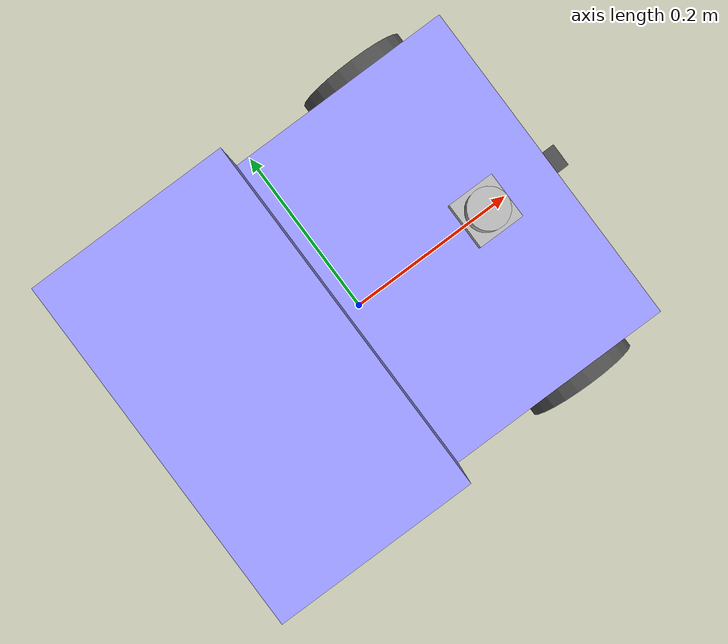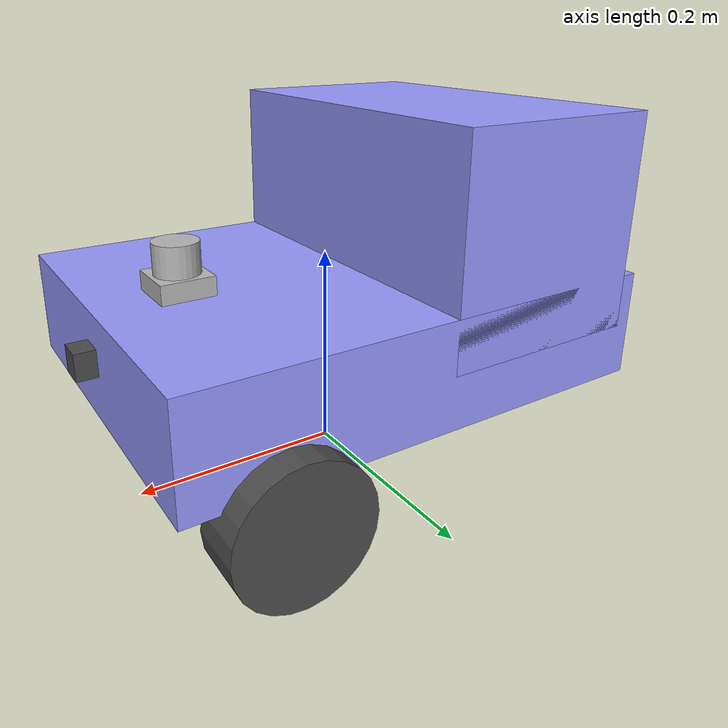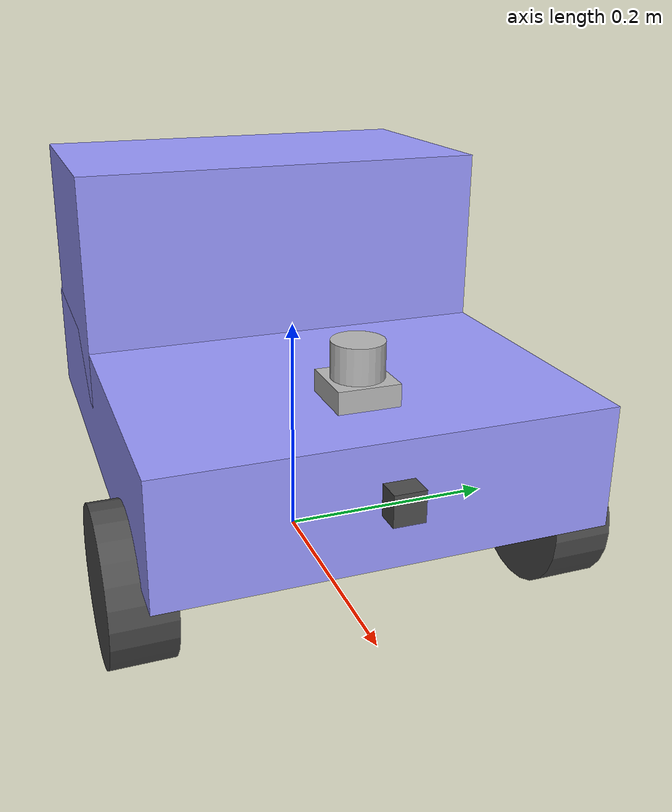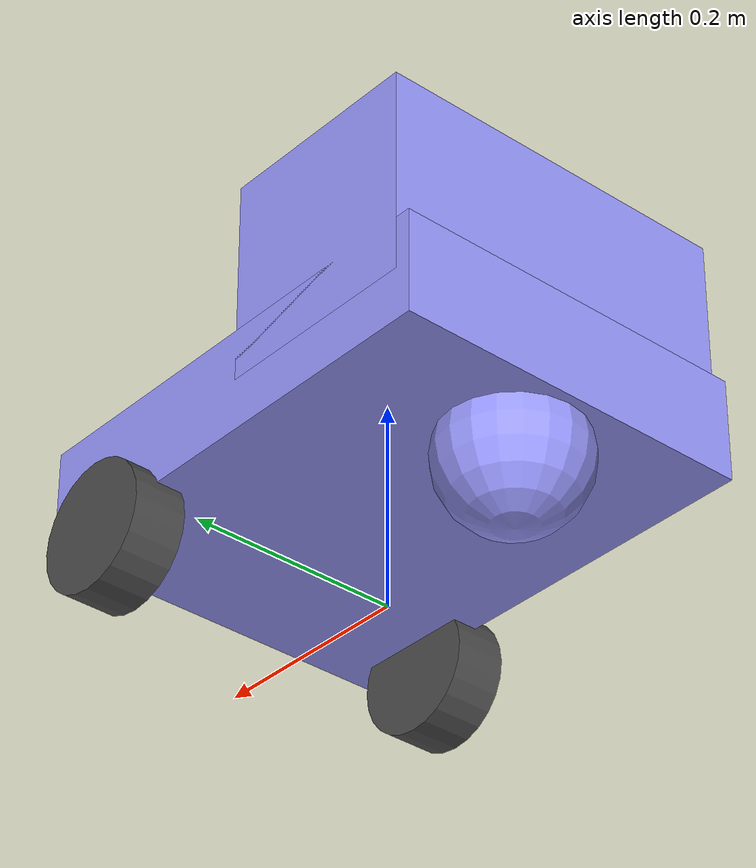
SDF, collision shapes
<?xml version='1.0'?>
<sdf version='1.4'>
  <model name="Collection_bot">
    <static>false</static>

    <link name="base_link">
      <pose>0 0 0.138 0 0 0</pose>
      <inertial>
        <mass>2.0</mass>
        <inertia>
          <ixx>.25</ixx>
          <ixy>0.0</ixy>
          <ixz>0.0</ixz>
          <iyy>.25</iyy>
          <iyz>0.0</iyz>
          <izz>.25</izz>
        </inertia>
      </inertial>
      <collision name="collision">
        <geometry>
          <box>
            <size>0.4572 0.3556 0.1</size>
          </box>
        </geometry>
      </collision>
      <visual name="visual">
        <geometry>
          <box>
            <size>0.4572 0.3556 0.1</size>
          </box>
        </geometry>
        <material>
          <ambient>0.6 0.6 1 1</ambient>
          <diffuse>0.6 0.6 1 1</diffuse>
          <specular>0.1 0.1 0.1 1</specular>
          <emissive>0 0 0 0</emissive>
        </material>
      </visual>

      <collision name="trash_can">
        <pose>-0.114 0 0.1 0 0 0</pose>
        <geometry>
          <box>
            <size>0.2 0.3556 0.2</size>
          </box>
        </geometry>
      </collision>
      <visual name="trash_visual">
        <pose>-0.114 0 0.1 0 0 0</pose>
        <geometry>
          <box>
            <size>.2 .3556 .2</size>
          </box>
        </geometry>
        <material>
          <ambient>0.3 0.3 0.3 1</ambient>
          <diffuse>0.3 0.3 0.3 1</diffuse>
          <specular>0.1 0.1 0.1 1</specular>
          <emissive>0 0 0 0</emissive>
        </material>
      </visual>

      <collision name="caster_collision">
        <pose>-0.154 0 -0.06905 0 0 0</pose>
        <geometry>
          <sphere>
            <radius>0.06905</radius>
          </sphere>
        </geometry>
        <surface>
          <friction>
            <ode>
              <mu>0</mu>
              <mu2>0</mu2>
              <slip1>1.0</slip1>
              <slip2>1.0</slip2>
            </ode>
          </friction>
        </surface>
      </collision>
      <visual name="caster_visual">
        <pose>-0.154 0 -0.06905 0 0 0</pose>
        <geometry>
          <sphere>
            <radius>0.06905</radius>
          </sphere>
        </geometry>
        <material>
          <ambient>0.3 0.3 0.3 1</ambient>
          <diffuse>0.3 0.3 0.3 1</diffuse>
          <specular>0.1 0.1 0.1 1</specular>
          <emissive>0 0 0 0</emissive>
        </material>
      </visual>
    </link>

    <link name="left_wheel_link">
      <pose>0.1413 -0.1778 0.0619125 1.57079632679 0 0</pose>
      <inertial>
        <mass>.143</mass>
        <inertia>
          <ixx>.00041955</ixx>
          <ixy>0.0</ixy>
          <ixz>0.0</ixz>
          <iyy>.00027407</iyy>
          <iyz>0.0</iyz>
          <izz>.00041955</izz>
        </inertia>
      </inertial>
      <collision name="collision">
        <geometry>
          <cylinder>
            <length>0.05</length>
            <radius>0.0619125</radius>
          </cylinder>
        </geometry>
      </collision>
      <visual name="visual">
        <geometry>
          <cylinder>
            <length>0.05</length>
            <radius>0.0619125</radius>
          </cylinder>
        </geometry>
        <material>
          <ambient>0.3 0.3 0.3 1</ambient>
          <diffuse>0.3 0.3 0.3 1</diffuse>
          <specular>0.1 0.1 0.1 1</specular>
          <emissive>0 0 0 0</emissive>
        </material>
      </visual>
    </link>

    <link name="right_wheel_link">
      <pose>0.1413 0.1778 0.0619125 1.57079632679 0 0</pose>
      <inertial>
        <mass>.143</mass>
        <inertia>
          <ixx>.00041955</ixx>
          <ixy>0.0</ixy>
          <ixz>0.0</ixz>
          <iyy>.00027407</iyy>
          <iyz>0.0</iyz>
          <izz>.00041955</izz>
        </inertia>
      </inertial>
      <collision name="collision">
        <geometry>
          <cylinder>
            <length>0.05</length>
            <radius>0.0619125</radius>
          </cylinder>
        </geometry>
      </collision>
      <visual name="visual">
        <geometry>
          <cylinder>
            <length>0.05</length>
            <radius>0.0619125</radius>
          </cylinder>
        </geometry>
        <material>
          <ambient>0.3 0.3 0.3 1</ambient>
          <diffuse>0.3 0.3 0.3 1</diffuse>
          <specular>0.1 0.1 0.1 1</specular>
          <emissive>0 0 0 0</emissive>
        </material>
      </visual>
    </link>

    <!-- Joints -->
    <joint name="base_left_wheel" type="revolute">
      <parent>base_link</parent>
      <child>left_wheel_link</child>
      <axis>
        <xyz>0 1 0</xyz>
      </axis>
    </joint>

    <joint name="base_right_wheel" type="revolute">
      <parent>base_link</parent>
      <child>right_wheel_link</child>
      <axis>
        <xyz>0 1 0</xyz>
      </axis>
    </joint>

    <link name="hokuyo_link">
      <pose>0.15 0 .2 0 0 0</pose>
      <inertial>
        <mass>0.1</mass>
      </inertial>
      <visual name="visual">
        <geometry>
          <mesh>
            <uri>model://hokuyo/meshes/hokuyo.dae</uri>
          </mesh>
        </geometry>
      </visual>

      <collision name="collision-base">
        <pose>0 0 -0.0145 0 0 0</pose>
        <geometry>
          <box>
            <size>0.05 0.05 0.041</size>
          </box>
        </geometry>
      </collision>

      <collision name="collision-top">
        <pose>0 0 0.0205 0 0 0</pose>
        <geometry>
          <cylinder>
            <radius>0.021</radius>
            <length>0.029</length>
          </cylinder>
        </geometry>
      </collision>

      <sensor name="laser" type="ray">
        <pose>0.01 0 0.0175 0 -0 0</pose>
        <ray>
          <scan>
            <horizontal>
              <samples>640</samples>
              <resolution>1</resolution>
              <min_angle>-2.26889</min_angle>
              <max_angle>2.268899</max_angle>
            </horizontal>
          </scan>
          <range>
            <min>0.08</min>
            <max>10</max>
            <resolution>0.01</resolution>
          </range>
        </ray>

        <plugin name="laser" filename="libgazebo_ros_laser.so">
          <frameName>hokuyo_frame</frameName>
          <topicName>scan</topicName>
        </plugin>
        <always_on>1</always_on>
        <update_rate>30</update_rate>
        <visualize>false</visualize>
      </sensor>
    </link>

    <joint name="camera_joint" type="revolute">
      <axis>
        <xyz>0 0 1</xyz>
        <limit>
          <upper>0</upper>
          <lower>0</lower>
        </limit>
      </axis>
      <parent>base_link</parent>
      <child>camera_link</child>
    </joint>

    <!-- Camera -->
    <link name="camera_link">
      <pose>0.235 0 0.145 0 0 0</pose>

      <collision name="collision-camera">

        <geometry>
          <box><size>.025 .025 0.025</size></box>
        </geometry>
      </collision>

      <visual name="visual-camera">

        <geometry>
          <box><size>.025 .025 0.025</size></box>
        </geometry>
        <material>
          <ambient>0.3 0.3 0.3 1</ambient>
          <diffuse>0.3 0.3 0.3 1</diffuse>
          <specular>0.1 0.1 0.1 1</specular>
          <emissive>0 0 0 0</emissive>
        </material>
      </visual>

      <inertial>
        <mass>1e-5</mass>
        <inertia>
          <ixx>1e-6</ixx>
          <ixy>0</ixy>
          <ixz>0</ixz>
          <iyy>1e-6</iyy>
          <iyz>0</iyz>
          <izz>1e-6</izz>
        </inertia>
      </inertial>

      <sensor type="camera" name="camera1">
        <update_rate>30.0</update_rate>
        <camera name="camera1">
          <horizontal_fov>1.04719755</horizontal_fov>
          <image>
            <width>640</width>
            <height>480</height>
            <format>R8G8B8</format>
          </image>
          <clip>
            <near>0.02</near>
            <far>300</far>
          </clip>
          <noise>
            <type>gaussian</type>
            <mean>0.0</mean>
            <stddev>0.007</stddev>
          </noise>
        </camera>
        <plugin name="camera_controller" filename="libgazebo_ros_camera.so">
          <alwaysOn>true</alwaysOn>
          <updateRate>30.0</updateRate>
          <cameraName>camera</cameraName>
          <imageTopicName>image_raw</imageTopicName>
          <cameraInfoTopicName>camera_info</cameraInfoTopicName>
          <frameName>camera_link</frameName>
          <hackBaseline>0.07</hackBaseline>
          <distortionK1>0.0</distortionK1>
          <distortionK2>0.0</distortionK2>
          <distortionK3>0.0</distortionK3>
          <distortionT1>0.0</distortionT1>
          <distortionT2>0.0</distortionT2>
        </plugin>
      </sensor>
    </link>

    <joint name="hokuyo_joint" type="revolute">
      <child>hokuyo_link</child>
      <parent>base_link</parent>
      <axis>
        <xyz>0 0 1</xyz>
        <limit>
          <upper>0</upper>
          <lower>0</lower>
        </limit>
      </axis>
    </joint>

    <plugin name="differential_drive_controller" filename="libgazebo_ros_diff_drive.so">
      <alwaysOn>true</alwaysOn>
      <updateRate>20</updateRate>
      <leftJoint>base_left_wheel</leftJoint>
      <rightJoint>base_right_wheel</rightJoint>
      <wheelSeparation>0.5072</wheelSeparation>
      <wheelDiameter>0.123825</wheelDiameter>
      <torque>20</torque>
      <commandTopic>cmd_vel</commandTopic>
      <odometryTopic>odom</odometryTopic>
      <odometryFrame>odom</odometryFrame>
      <robotBaseFrame>robot_center</robotBaseFrame>
    </plugin>

  </model>
</sdf>
